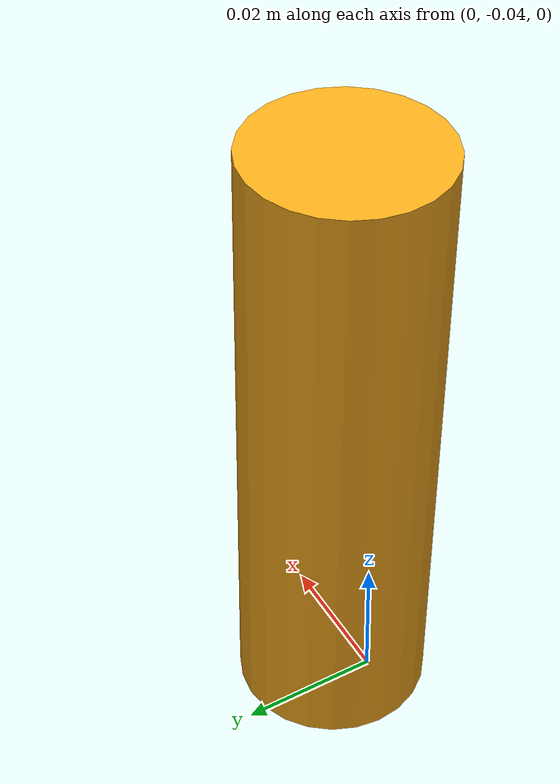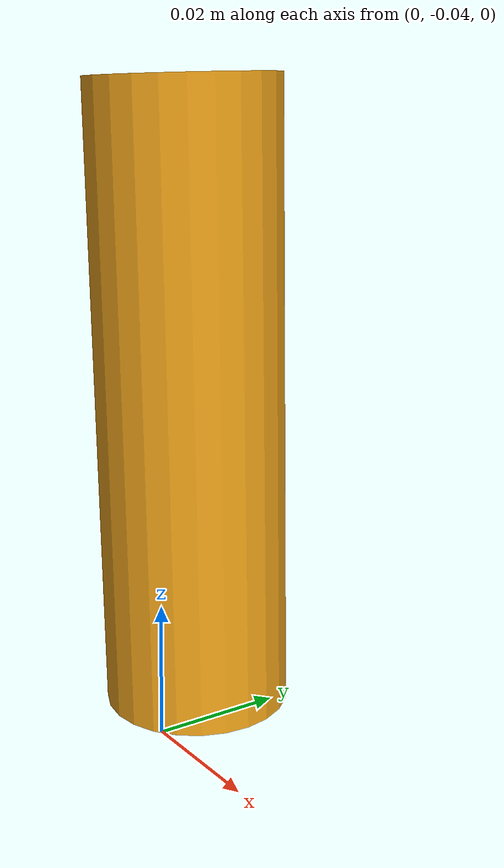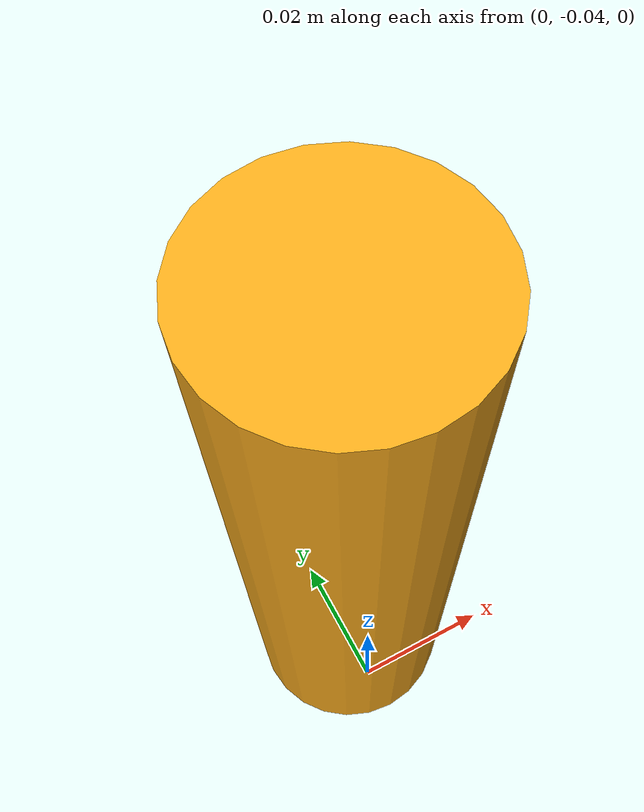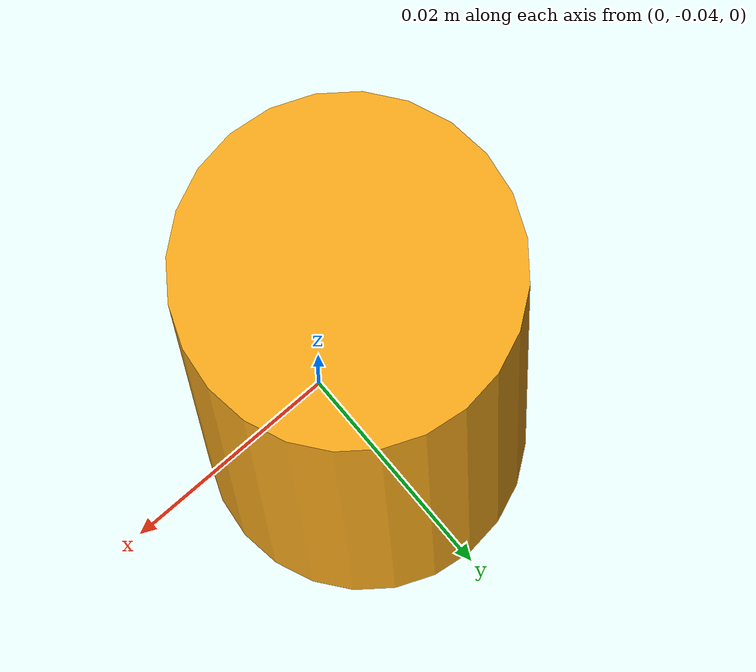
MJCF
<mujoco>

    <worldbody>

        <!-- bottle height = 9cm, radius = 1.35cm -->
        <body name="bottle" pos="0.0 -0.035 0.05">
            <joint name="bottle_joint" type="free"/>
            <geom condim="4" solimp="2 1 0.01" solref="0.01 1" friction="1 0.005 0.0001" pos="0 0 0" axisangle="1 0 0 1.57" size="0.0135 0.045" type="cylinder" name="pill_bottle" rgba="0.98 0.671 0.106 1" mass="0.005"/>
        </body>

        <!-- visualization of bottle initial position boundary -->
        <!-- x range: [-0.1, 0.3] -->
        <!-- y range: [-0.19, 0.07] -->

    </worldbody>

</mujoco>
